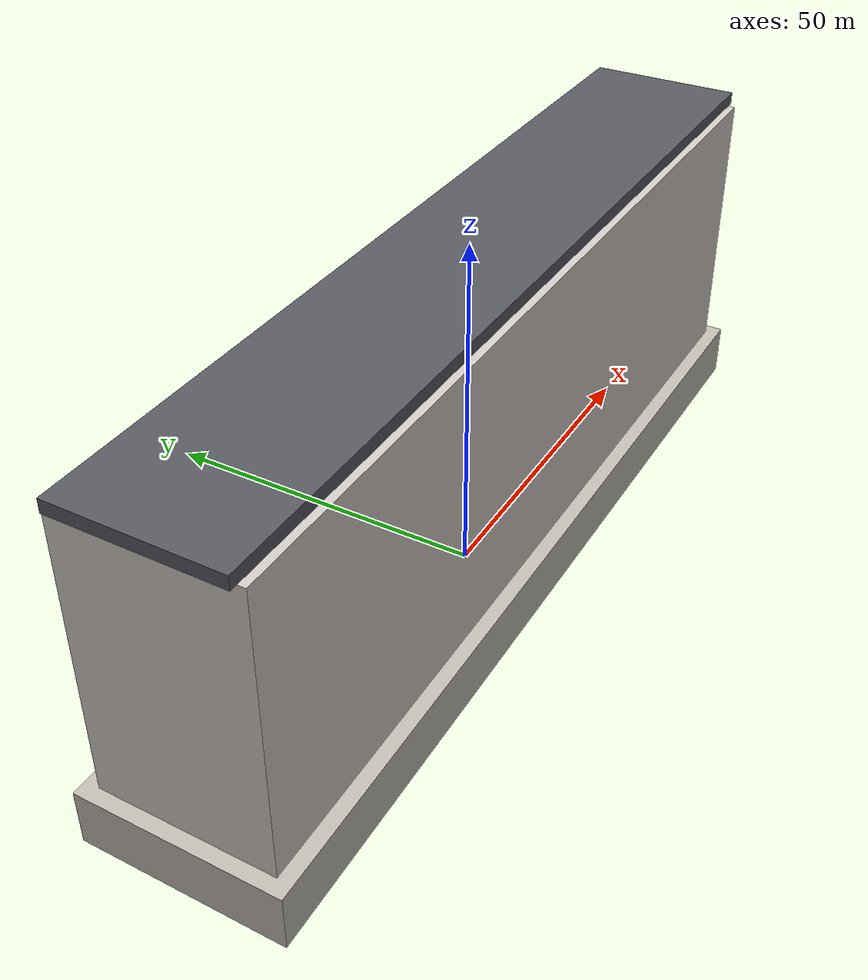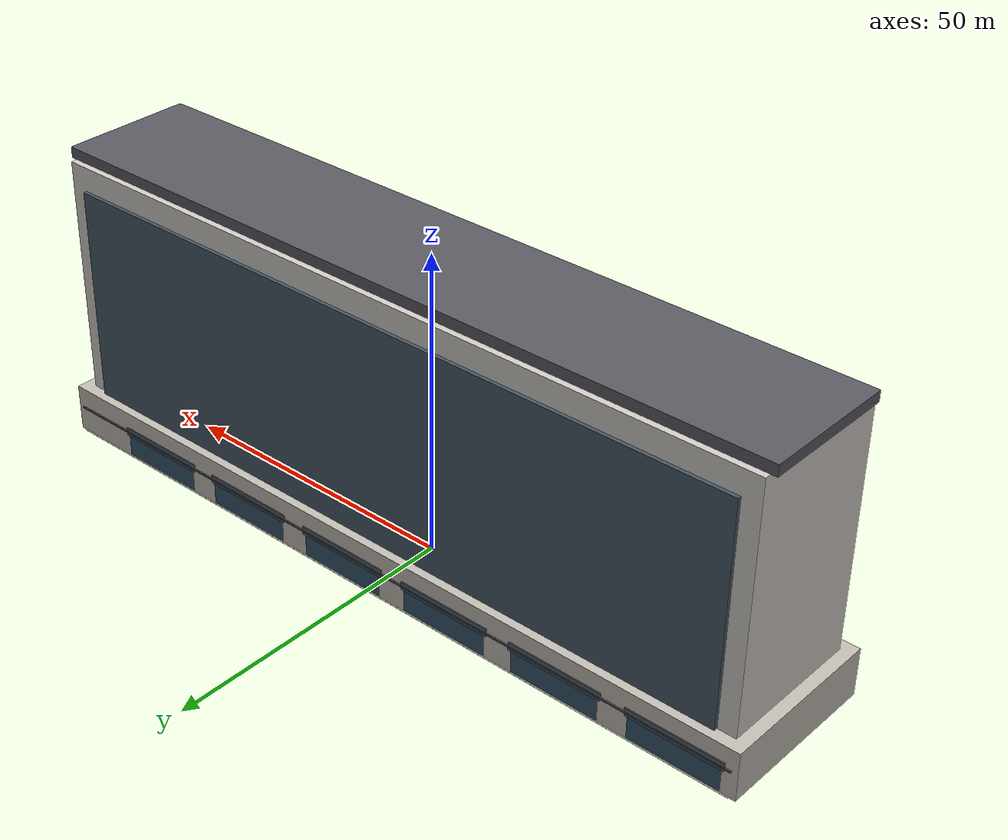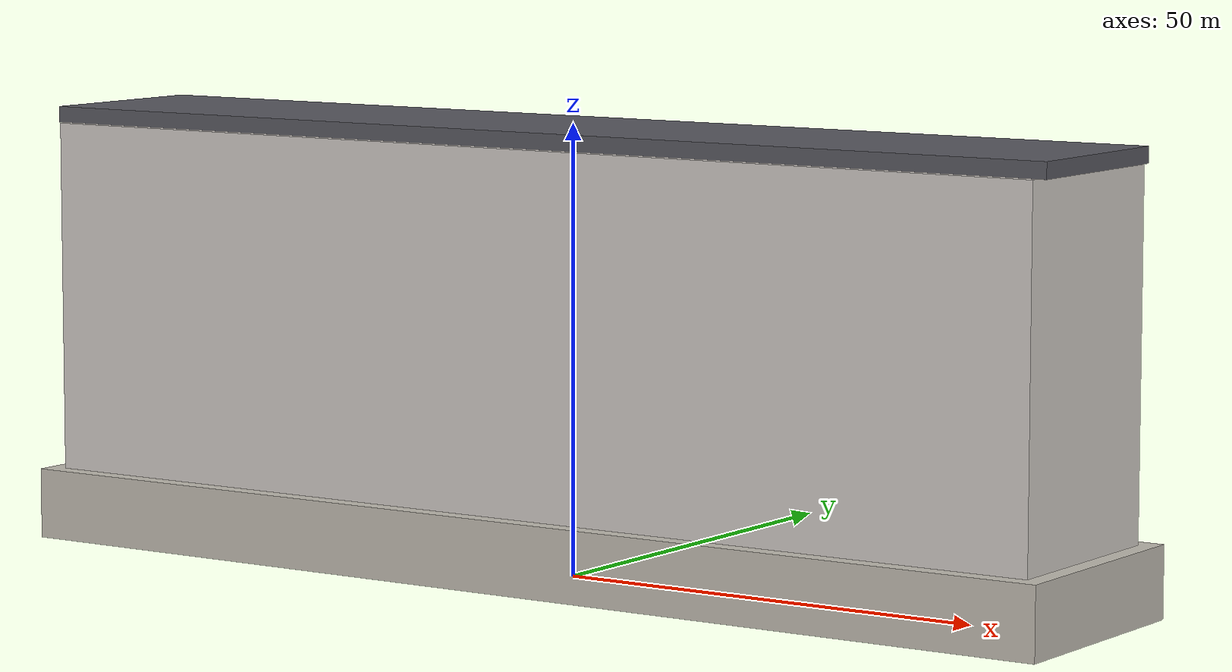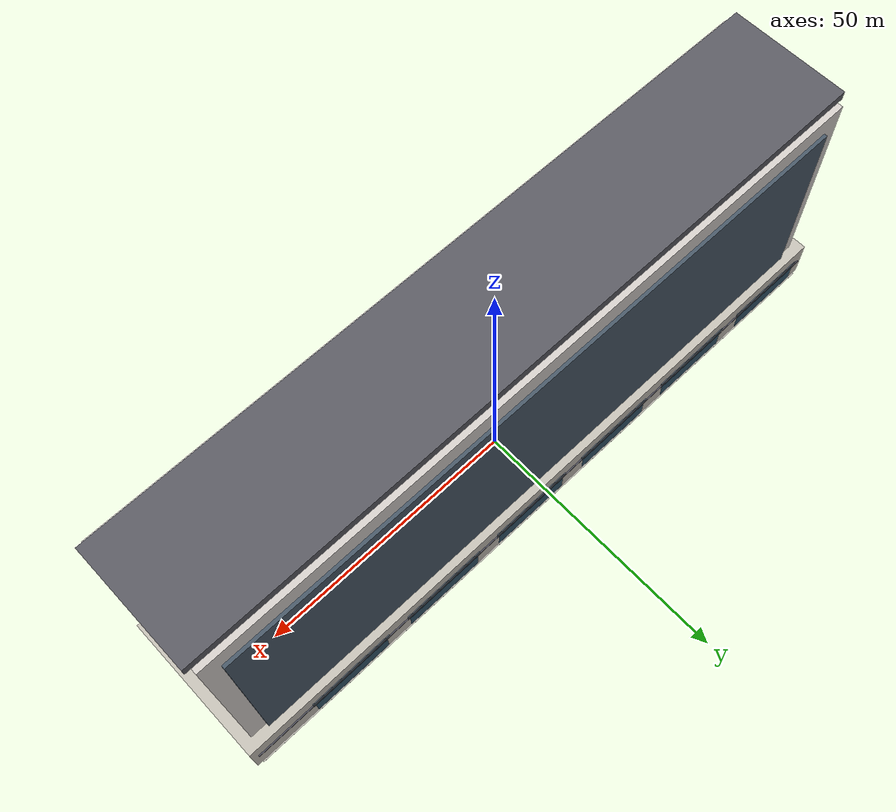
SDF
<?xml version="1.0" ?>
<sdf version="1.8">
  <model name="guangfu_south_strip_west">
    <static>true</static>
    <link name="strip_link">
      <collision name="podium_col"><pose>0 0 4.0 0 0 0</pose><geometry><box><size>130.0 28.0 8.0</size></box></geometry></collision>
      <collision name="tower_col"><pose>0 0 24.0 0 0 0</pose><geometry><box><size>126.0 24.0 48.0</size></box></geometry></collision>
      <visual name="podium_vis"><pose>0 0 4.0 0 0 0</pose><geometry><box><size>130.0 28.0 8.0</size></box></geometry><material><ambient>0.70 0.68 0.65 1</ambient><diffuse>0.76 0.74 0.70 1</diffuse></material></visual>
      <!-- 1F 連續騎樓走廊 (Y = +12.5m facing Guangfu Rd) -->
      <visual name="arcade_floor"><pose>0 12.5 0.08 0 0 0</pose><geometry><box><size>128.0 3.5 0.02</size></box></geometry><material><ambient>0.60 0.58 0.56 1</ambient><diffuse>0.68 0.66 0.64 1</diffuse></material></visual>
      <visual name="arcade_ceiling"><pose>0 12.5 4.5 0 0 0</pose><geometry><box><size>128.0 3.5 0.25</size></box></geometry><material><ambient>0.25 0.25 0.28 1</ambient><diffuse>0.30 0.30 0.34 1</diffuse></material></visual>
      <visual name="shop_sign_0"><pose>-55.0 14.1 4.6 0 0 0</pose><geometry><box><size>16.0 0.15 1.4</size></box></geometry><material><ambient>0.25 0.28 0.32 1</ambient><diffuse>0.32 0.36 0.40 1</diffuse></material></visual>
      <visual name="shop_glass_0"><pose>-55.0 14.05 2.2 0 0 0</pose><geometry><box><size>15.0 0.1 3.8</size></box></geometry><material><ambient>0.15 0.25 0.35 0.88</ambient><diffuse>0.20 0.35 0.45 0.88</diffuse><specular>0.9 0.95 1.0 1</specular></material></visual>
      <visual name="shop_sign_1"><pose>-35.0 14.1 4.6 0 0 0</pose><geometry><box><size>16.0 0.15 1.4</size></box></geometry><material><ambient>0.25 0.28 0.32 1</ambient><diffuse>0.32 0.36 0.40 1</diffuse></material></visual>
      <visual name="shop_glass_1"><pose>-35.0 14.05 2.2 0 0 0</pose><geometry><box><size>15.0 0.1 3.8</size></box></geometry><material><ambient>0.15 0.25 0.35 0.88</ambient><diffuse>0.20 0.35 0.45 0.88</diffuse><specular>0.9 0.95 1.0 1</specular></material></visual>
      <visual name="shop_sign_2"><pose>-15.0 14.1 4.6 0 0 0</pose><geometry><box><size>16.0 0.15 1.4</size></box></geometry><material><ambient>0.25 0.28 0.32 1</ambient><diffuse>0.32 0.36 0.40 1</diffuse></material></visual>
      <visual name="shop_glass_2"><pose>-15.0 14.05 2.2 0 0 0</pose><geometry><box><size>15.0 0.1 3.8</size></box></geometry><material><ambient>0.15 0.25 0.35 0.88</ambient><diffuse>0.20 0.35 0.45 0.88</diffuse><specular>0.9 0.95 1.0 1</specular></material></visual>
      <visual name="shop_sign_3"><pose>5.0 14.1 4.6 0 0 0</pose><geometry><box><size>16.0 0.15 1.4</size></box></geometry><material><ambient>0.25 0.28 0.32 1</ambient><diffuse>0.32 0.36 0.40 1</diffuse></material></visual>
      <visual name="shop_glass_3"><pose>5.0 14.05 2.2 0 0 0</pose><geometry><box><size>15.0 0.1 3.8</size></box></geometry><material><ambient>0.15 0.25 0.35 0.88</ambient><diffuse>0.20 0.35 0.45 0.88</diffuse><specular>0.9 0.95 1.0 1</specular></material></visual>
      <visual name="shop_sign_4"><pose>25.0 14.1 4.6 0 0 0</pose><geometry><box><size>16.0 0.15 1.4</size></box></geometry><material><ambient>0.25 0.28 0.32 1</ambient><diffuse>0.32 0.36 0.40 1</diffuse></material></visual>
      <visual name="shop_glass_4"><pose>25.0 14.05 2.2 0 0 0</pose><geometry><box><size>15.0 0.1 3.8</size></box></geometry><material><ambient>0.15 0.25 0.35 0.88</ambient><diffuse>0.20 0.35 0.45 0.88</diffuse><specular>0.9 0.95 1.0 1</specular></material></visual>
      <visual name="shop_sign_5"><pose>45.0 14.1 4.6 0 0 0</pose><geometry><box><size>16.0 0.15 1.4</size></box></geometry><material><ambient>0.25 0.28 0.32 1</ambient><diffuse>0.32 0.36 0.40 1</diffuse></material></visual>
      <visual name="shop_glass_5"><pose>45.0 14.05 2.2 0 0 0</pose><geometry><box><size>15.0 0.1 3.8</size></box></geometry><material><ambient>0.15 0.25 0.35 0.88</ambient><diffuse>0.20 0.35 0.45 0.88</diffuse><specular>0.9 0.95 1.0 1</specular></material></visual>
      <!-- 主塔樓立面 (15F, 高 48.0m) -->
      <visual name="tower_main_vis"><pose>0 0 24.0 0 0 0</pose><geometry><box><size>126.0 24.0 48.0</size></box></geometry><material><ambient>0.76 0.74 0.72 1</ambient><diffuse>0.82 0.80 0.78 1</diffuse></material></visual>
      <visual name="balconies_front"><pose>0 12.2 26.0 0 0 0</pose><geometry><box><size>120.0 0.8 36.0</size></box></geometry><material><ambient>0.22 0.26 0.32 0.9</ambient><diffuse>0.28 0.34 0.40 0.9</diffuse></material></visual>
      <visual name="roof_parapet"><pose>0 0 48.9 0 0 0</pose><geometry><box><size>128.0 22.0 1.8</size></box></geometry><material><ambient>0.30 0.30 0.32 1</ambient><diffuse>0.35 0.35 0.38 1</diffuse></material></visual>
    </link>
  </model>
</sdf>
